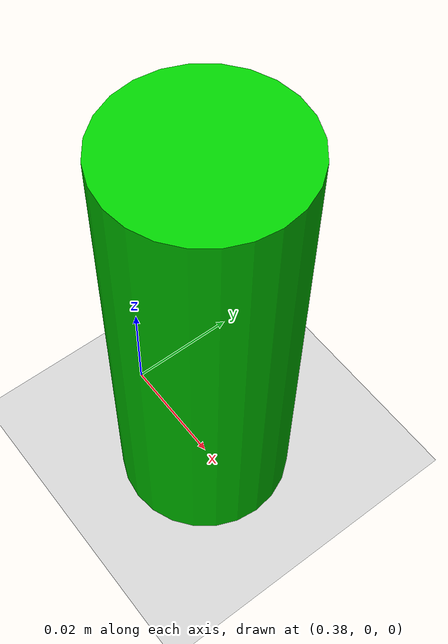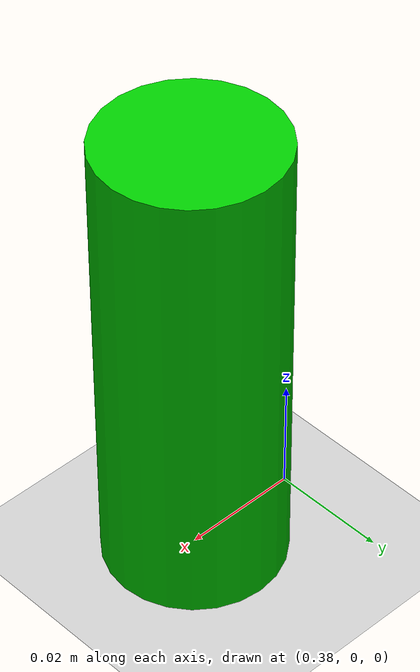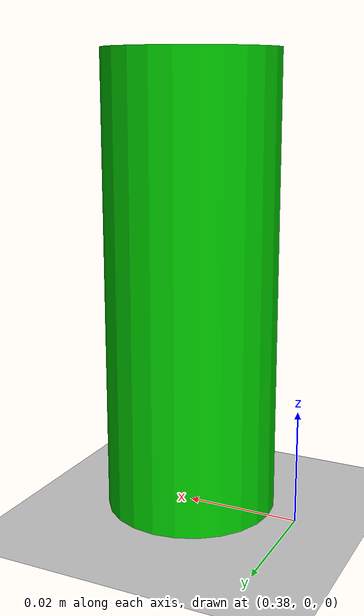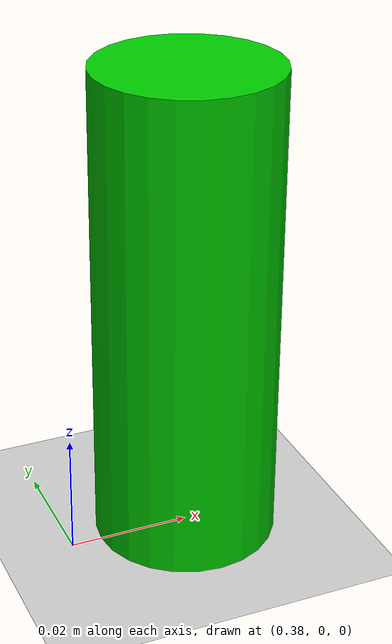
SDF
<?xml version="1.0" ?>
<sdf version="1.9">
  <world name="default">
    <physics name="1ms" type="ignored">
      <max_step_size>0.001</max_step_size>
      <real_time_factor>1.0</real_time_factor>
    </physics>
    <plugin
      filename="libgz-sim-physics-system.so"
      name="gz::sim::systems::Physics">
    </plugin>
    <plugin
      filename="libgz-sim-user-commands-system.so"
      name="gz::sim::systems::UserCommands">
    </plugin>
    <plugin
      filename="libgz-sim-scene-broadcaster-system.so"
      name="gz::sim::systems::SceneBroadcaster">
    </plugin>

    <light type="directional" name="sun">
      <cast_shadows>true</cast_shadows>
      <pose>0 0 10 0 0 0</pose>
      <diffuse>0.8 0.8 0.8 1</diffuse>
      <specular>0.2 0.2 0.2 1</specular>
      <attenuation>
        <range>1000</range>
        <constant>0.9</constant>
        <linear>0.01</linear>
        <quadratic>0.001</quadratic>
      </attenuation>
      <direction>-0.5 0.1 -0.9</direction>
    </light>

    <model name="ground_plane">
      <static>true</static>
      <link name="link">
        <collision name="collision">
          <geometry>
            <plane>
              <normal>0 0 1</normal>
              <size>100 100</size>
            </plane>
          </geometry>
          <surface>
            <friction>
              <ode>
                <mu>50</mu>
                <mu2>50</mu2>
              </ode>
            </friction>
          </surface>
        </collision>
        <visual name="visual">
          <geometry>
            <plane>
              <normal>0 0 1</normal>
              <size>100 100</size>
            </plane>
          </geometry>
          <material>
            <ambient>0.8 0.8 0.8 1</ambient>
            <diffuse>0.8 0.8 0.8 1</diffuse>
            <specular>0.8 0.8 0.8 1</specular>
          </material>
        </visual>
      </link>
    </model>

    <!-- Graspable Object (Cylinder) -->
    <model name="graspable_object">
      <pose>0.4 0.0 0.04 0 0 0</pose>
      <link name="object_link">
        <inertial>
          <mass>0.05</mass>
          <inertia>
            <ixx>0.00003</ixx>
            <ixy>0</ixy>
            <ixz>0</ixz>
            <iyy>0.00003</iyy>
            <iyz>0</iyz>
            <izz>0.00001</izz>
          </inertia>
        </inertial>
        <collision name="collision">
          <geometry>
            <cylinder>
              <radius>0.015</radius>
              <length>0.08</length>
            </cylinder>
          </geometry>
          <surface>
            <friction>
              <ode>
                <mu>10.0</mu>
                <mu2>10.0</mu2>
              </ode>
            </friction>
            <contact>
              <ode>
                <kp>100000.0</kp>
                <kd>100.0</kd>
                <max_vel>0.0</max_vel>
                <min_depth>0.001</min_depth>
              </ode>
            </contact>
          </surface>
        </collision>
        <visual name="visual">
          <geometry>
            <cylinder>
              <radius>0.015</radius>
              <length>0.08</length>
            </cylinder>
          </geometry>
          <material>
            <ambient>0.0 0.8 0.0 1</ambient>
            <diffuse>0.0 0.8 0.0 1</diffuse>
            <specular>0.0 0.8 0.0 1</specular>
          </material>
        </visual>
      </link>
    </model>

  </world>
</sdf>
